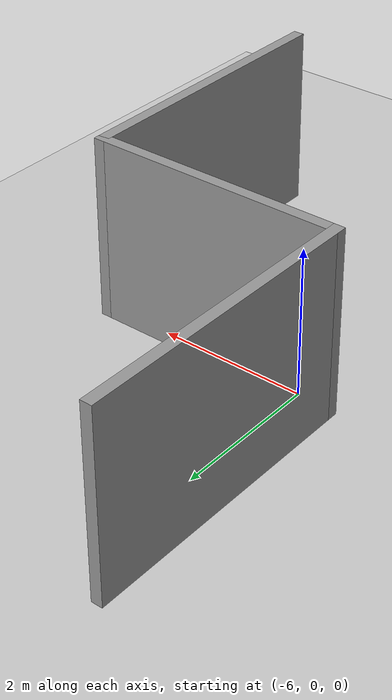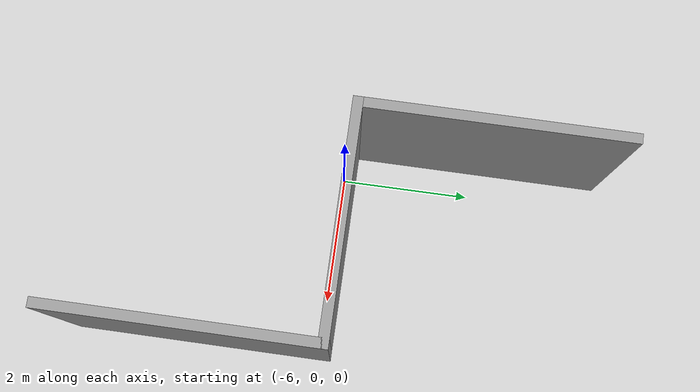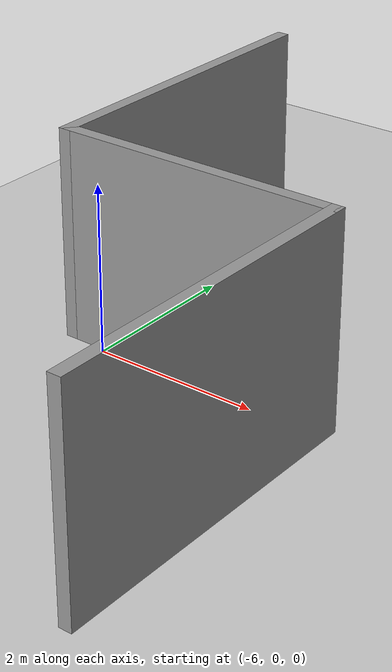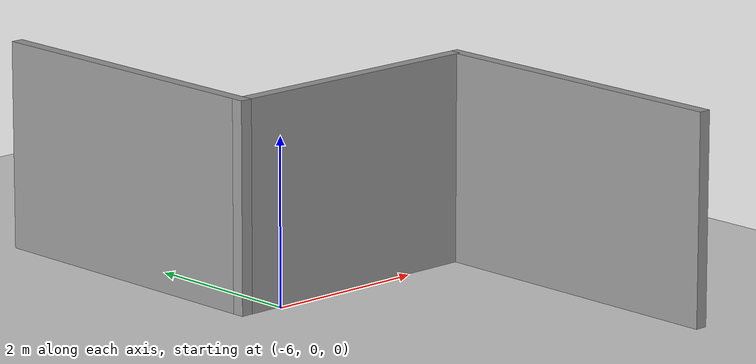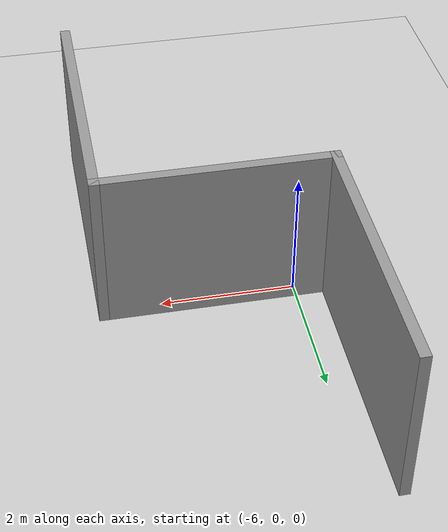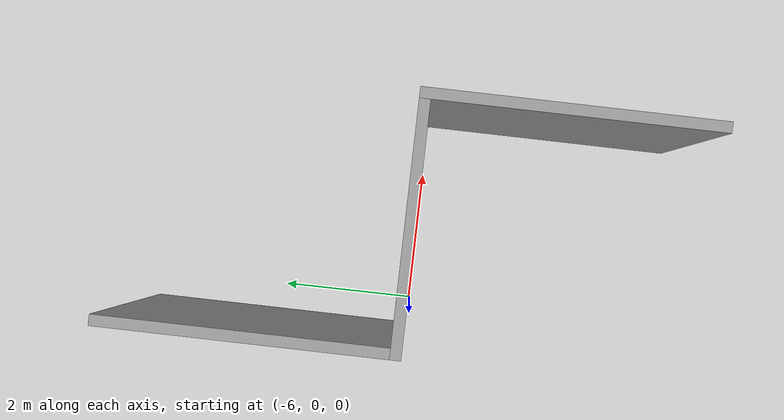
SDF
<?xml version="1.0"?>
<sdf version="1.6">
  <world name="default">

    <include>
      <uri>model://ground_plane</uri>
    </include>

    <include>
      <uri>model://sun</uri>
    </include>

    <scene>
      <shadows>false</shadows>
    </scene>

    <gui fullscreen='0'>
      <camera name='user_camera'>
        <pose frame=''>0.319654 -0.235002 9.29441 0 1.5138 0.009599</pose>
        <view_controller>orbit</view_controller>
        <projection_type>perspective</projection_type>
      </camera>
    </gui>

    <physics type="ode">
      <real_time_update_rate>1000.0</real_time_update_rate>
      <max_step_size>0.001</max_step_size>
      <real_time_factor>1</real_time_factor>
      <ode>
        <solver>
          <type>quick</type>
          <iters>150</iters>
          <precon_iters>0</precon_iters>
          <sor>1.400000</sor>
          <use_dynamic_moi_rescaling>1</use_dynamic_moi_rescaling>
        </solver>
        <constraints>
          <cfm>0.00001</cfm>
          <erp>0.2</erp>
          <contact_max_correcting_vel>2000.000000</contact_max_correcting_vel>
          <contact_surface_layer>0.01000</contact_surface_layer>
        </constraints>
      </ode>
    </physics>

    <model name="z_wall">
      <static>1</static>
      <include>
        <uri>models://z_wall</uri>
      </include>
    </model>

  </world>
</sdf>

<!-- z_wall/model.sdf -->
<sdf version='1.7'>
  <model name='z_wall'>
    <pose>-3.27896 0.109085 0 0 -0 0</pose>
    <link name='Wall_26'>
      <collision name='Wall_26_Collision'>
        <geometry>
          <box>
            <size>4 0.15 2.5</size>
          </box>
        </geometry>
        <pose>0 0 1.25 0 -0 0</pose>
      </collision>
      <visual name='Wall_26_Visual'>
        <pose>0 0 1.25 0 -0 0</pose>
        <geometry>
          <box>
            <size>4 0.15 2.5</size>
          </box>
        </geometry>
        <material>
          <script>
            <uri>file://media/materials/scripts/gazebo.material</uri>
            <name>Gazebo/Grey</name>
          </script>
          <ambient>1 1 1 1</ambient>
        </material>
        <meta>
          <layer>0</layer>
        </meta>
      </visual>
      <pose>0.146036 -1.925 0 0 -0 -1.5708</pose>
    </link>
    <link name='Wall_28'>
      <collision name='Wall_28_Collision'>
        <geometry>
          <box>
            <size>3.5 0.15 2.5</size>
          </box>
        </geometry>
        <pose>0 0 1.25 0 -0 0</pose>
      </collision>
      <visual name='Wall_28_Visual'>
        <pose>0 0 1.25 0 -0 0</pose>
        <geometry>
          <box>
            <size>3.5 0.15 2.5</size>
          </box>
        </geometry>
        <material>
          <script>
            <uri>file://media/materials/scripts/gazebo.material</uri>
            <name>Gazebo/Grey</name>
          </script>
          <ambient>1 1 1 1</ambient>
        </material>
        <meta>
          <layer>0</layer>
        </meta>
      </visual>
      <pose>-1.52896 -0 0 0 -0 3.14159</pose>
    </link>
    <link name='Wall_29'>
      <collision name='Wall_29_Collision'>
        <geometry>
          <box>
            <size>4 0.15 2.5</size>
          </box>
        </geometry>
        <pose>0 0 1.25 0 -0 0</pose>
      </collision>
      <visual name='Wall_29_Visual'>
        <pose>0 0 1.25 0 -0 0</pose>
        <geometry>
          <box>
            <size>4 0.15 2.5</size>
          </box>
        </geometry>
        <material>
          <script>
            <uri>file://media/materials/scripts/gazebo.material</uri>
            <name>Gazebo/Grey</name>
          </script>
          <ambient>1 1 1 1</ambient>
        </material>
        <meta>
          <layer>0</layer>
        </meta>
      </visual>
      <pose>-3.20396 1.925 0 0 -0 1.5708</pose>
    </link>
    <static>1</static>
  </model>
</sdf>
